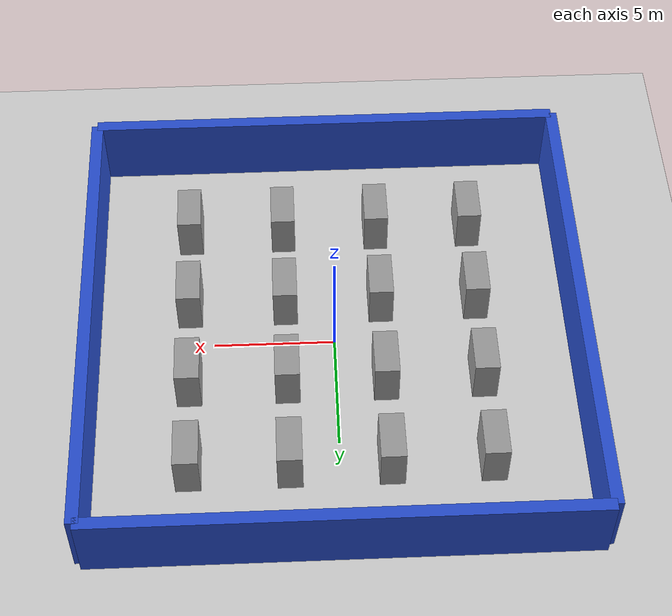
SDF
<?xml version="1.0" ?>
<sdf version="1.5">
<world name="default">
  <include><uri>model://sun</uri></include>
  <include><uri>model://ground_plane</uri></include>

            <model name="estante_0_0">
              <static>true</static>
              <pose>-6.0 -6.0 1.0 0 0 0</pose>
              <link name="link">
                <collision name="col"><geometry><box><size>1.0 2.0 2.0</size></box></geometry></collision>
                <visual name="vis"><geometry><box><size>1.0 2.0 2.0</size></box></geometry>
                  <material><script><uri>file://media/materials/scripts/gazebo.material</uri><name>Gazebo/Grey</name></script></material>
                </visual>
              </link>
            </model>
            <model name="estante_0_1">
              <static>true</static>
              <pose>-2.0 -6.0 1.0 0 0 0</pose>
              <link name="link">
                <collision name="col"><geometry><box><size>1.0 2.0 2.0</size></box></geometry></collision>
                <visual name="vis"><geometry><box><size>1.0 2.0 2.0</size></box></geometry>
                  <material><script><uri>file://media/materials/scripts/gazebo.material</uri><name>Gazebo/Grey</name></script></material>
                </visual>
              </link>
            </model>
            <model name="estante_0_2">
              <static>true</static>
              <pose>2.0 -6.0 1.0 0 0 0</pose>
              <link name="link">
                <collision name="col"><geometry><box><size>1.0 2.0 2.0</size></box></geometry></collision>
                <visual name="vis"><geometry><box><size>1.0 2.0 2.0</size></box></geometry>
                  <material><script><uri>file://media/materials/scripts/gazebo.material</uri><name>Gazebo/Grey</name></script></material>
                </visual>
              </link>
            </model>
            <model name="estante_0_3">
              <static>true</static>
              <pose>6.0 -6.0 1.0 0 0 0</pose>
              <link name="link">
                <collision name="col"><geometry><box><size>1.0 2.0 2.0</size></box></geometry></collision>
                <visual name="vis"><geometry><box><size>1.0 2.0 2.0</size></box></geometry>
                  <material><script><uri>file://media/materials/scripts/gazebo.material</uri><name>Gazebo/Grey</name></script></material>
                </visual>
              </link>
            </model>
            <model name="estante_1_0">
              <static>true</static>
              <pose>-6.0 -2.0 1.0 0 0 0</pose>
              <link name="link">
                <collision name="col"><geometry><box><size>1.0 2.0 2.0</size></box></geometry></collision>
                <visual name="vis"><geometry><box><size>1.0 2.0 2.0</size></box></geometry>
                  <material><script><uri>file://media/materials/scripts/gazebo.material</uri><name>Gazebo/Grey</name></script></material>
                </visual>
              </link>
            </model>
            <model name="estante_1_1">
              <static>true</static>
              <pose>-2.0 -2.0 1.0 0 0 0</pose>
              <link name="link">
                <collision name="col"><geometry><box><size>1.0 2.0 2.0</size></box></geometry></collision>
                <visual name="vis"><geometry><box><size>1.0 2.0 2.0</size></box></geometry>
                  <material><script><uri>file://media/materials/scripts/gazebo.material</uri><name>Gazebo/Grey</name></script></material>
                </visual>
              </link>
            </model>
            <model name="estante_1_2">
              <static>true</static>
              <pose>2.0 -2.0 1.0 0 0 0</pose>
              <link name="link">
                <collision name="col"><geometry><box><size>1.0 2.0 2.0</size></box></geometry></collision>
                <visual name="vis"><geometry><box><size>1.0 2.0 2.0</size></box></geometry>
                  <material><script><uri>file://media/materials/scripts/gazebo.material</uri><name>Gazebo/Grey</name></script></material>
                </visual>
              </link>
            </model>
            <model name="estante_1_3">
              <static>true</static>
              <pose>6.0 -2.0 1.0 0 0 0</pose>
              <link name="link">
                <collision name="col"><geometry><box><size>1.0 2.0 2.0</size></box></geometry></collision>
                <visual name="vis"><geometry><box><size>1.0 2.0 2.0</size></box></geometry>
                  <material><script><uri>file://media/materials/scripts/gazebo.material</uri><name>Gazebo/Grey</name></script></material>
                </visual>
              </link>
            </model>
            <model name="estante_2_0">
              <static>true</static>
              <pose>-6.0 2.0 1.0 0 0 0</pose>
              <link name="link">
                <collision name="col"><geometry><box><size>1.0 2.0 2.0</size></box></geometry></collision>
                <visual name="vis"><geometry><box><size>1.0 2.0 2.0</size></box></geometry>
                  <material><script><uri>file://media/materials/scripts/gazebo.material</uri><name>Gazebo/Grey</name></script></material>
                </visual>
              </link>
            </model>
            <model name="estante_2_1">
              <static>true</static>
              <pose>-2.0 2.0 1.0 0 0 0</pose>
              <link name="link">
                <collision name="col"><geometry><box><size>1.0 2.0 2.0</size></box></geometry></collision>
                <visual name="vis"><geometry><box><size>1.0 2.0 2.0</size></box></geometry>
                  <material><script><uri>file://media/materials/scripts/gazebo.material</uri><name>Gazebo/Grey</name></script></material>
                </visual>
              </link>
            </model>
            <model name="estante_2_2">
              <static>true</static>
              <pose>2.0 2.0 1.0 0 0 0</pose>
              <link name="link">
                <collision name="col"><geometry><box><size>1.0 2.0 2.0</size></box></geometry></collision>
                <visual name="vis"><geometry><box><size>1.0 2.0 2.0</size></box></geometry>
                  <material><script><uri>file://media/materials/scripts/gazebo.material</uri><name>Gazebo/Grey</name></script></material>
                </visual>
              </link>
            </model>
            <model name="estante_2_3">
              <static>true</static>
              <pose>6.0 2.0 1.0 0 0 0</pose>
              <link name="link">
                <collision name="col"><geometry><box><size>1.0 2.0 2.0</size></box></geometry></collision>
                <visual name="vis"><geometry><box><size>1.0 2.0 2.0</size></box></geometry>
                  <material><script><uri>file://media/materials/scripts/gazebo.material</uri><name>Gazebo/Grey</name></script></material>
                </visual>
              </link>
            </model>
            <model name="estante_3_0">
              <static>true</static>
              <pose>-6.0 6.0 1.0 0 0 0</pose>
              <link name="link">
                <collision name="col"><geometry><box><size>1.0 2.0 2.0</size></box></geometry></collision>
                <visual name="vis"><geometry><box><size>1.0 2.0 2.0</size></box></geometry>
                  <material><script><uri>file://media/materials/scripts/gazebo.material</uri><name>Gazebo/Grey</name></script></material>
                </visual>
              </link>
            </model>
            <model name="estante_3_1">
              <static>true</static>
              <pose>-2.0 6.0 1.0 0 0 0</pose>
              <link name="link">
                <collision name="col"><geometry><box><size>1.0 2.0 2.0</size></box></geometry></collision>
                <visual name="vis"><geometry><box><size>1.0 2.0 2.0</size></box></geometry>
                  <material><script><uri>file://media/materials/scripts/gazebo.material</uri><name>Gazebo/Grey</name></script></material>
                </visual>
              </link>
            </model>
            <model name="estante_3_2">
              <static>true</static>
              <pose>2.0 6.0 1.0 0 0 0</pose>
              <link name="link">
                <collision name="col"><geometry><box><size>1.0 2.0 2.0</size></box></geometry></collision>
                <visual name="vis"><geometry><box><size>1.0 2.0 2.0</size></box></geometry>
                  <material><script><uri>file://media/materials/scripts/gazebo.material</uri><name>Gazebo/Grey</name></script></material>
                </visual>
              </link>
            </model>
            <model name="estante_3_3">
              <static>true</static>
              <pose>6.0 6.0 1.0 0 0 0</pose>
              <link name="link">
                <collision name="col"><geometry><box><size>1.0 2.0 2.0</size></box></geometry></collision>
                <visual name="vis"><geometry><box><size>1.0 2.0 2.0</size></box></geometry>
                  <material><script><uri>file://media/materials/scripts/gazebo.material</uri><name>Gazebo/Grey</name></script></material>
                </visual>
              </link>
            </model>
            <model name="norte"><static>true</static><pose>0 10 1.5 0 0 0</pose>
              <link name="link"><collision name="col"><geometry><box><size>20 0.5 3</size></box></geometry></collision>
                <visual name="vis"><geometry><box><size>20 0.5 3</size></box></geometry>
                  <material><script><uri>file://media/materials/scripts/gazebo.material</uri><name>Gazebo/Blue</name></script></material>
                </visual></link></model>
            <model name="sul"><static>true</static><pose>0 -10 1.5 0 0 0</pose>
              <link name="link"><collision name="col"><geometry><box><size>20 0.5 3</size></box></geometry></collision>
                <visual name="vis"><geometry><box><size>20 0.5 3</size></box></geometry>
                  <material><script><uri>file://media/materials/scripts/gazebo.material</uri><name>Gazebo/Blue</name></script></material>
                </visual></link></model>
            <model name="leste"><static>true</static><pose>10 0 1.5 0 0 0</pose>
              <link name="link"><collision name="col"><geometry><box><size>0.5 20 3</size></box></geometry></collision>
                <visual name="vis"><geometry><box><size>0.5 20 3</size></box></geometry>
                  <material><script><uri>file://media/materials/scripts/gazebo.material</uri><name>Gazebo/Blue</name></script></material>
                </visual></link></model>
            <model name="oeste"><static>true</static><pose>-10 0 1.5 0 0 0</pose>
              <link name="link"><collision name="col"><geometry><box><size>0.5 20 3</size></box></geometry></collision>
                <visual name="vis"><geometry><box><size>0.5 20 3</size></box></geometry>
                  <material><script><uri>file://media/materials/scripts/gazebo.material</uri><name>Gazebo/Blue</name></script></material>
                </visual></link></model>
</world>
</sdf>
